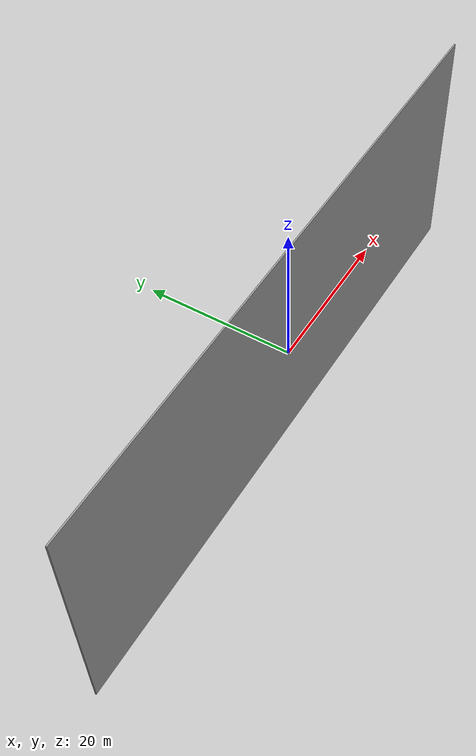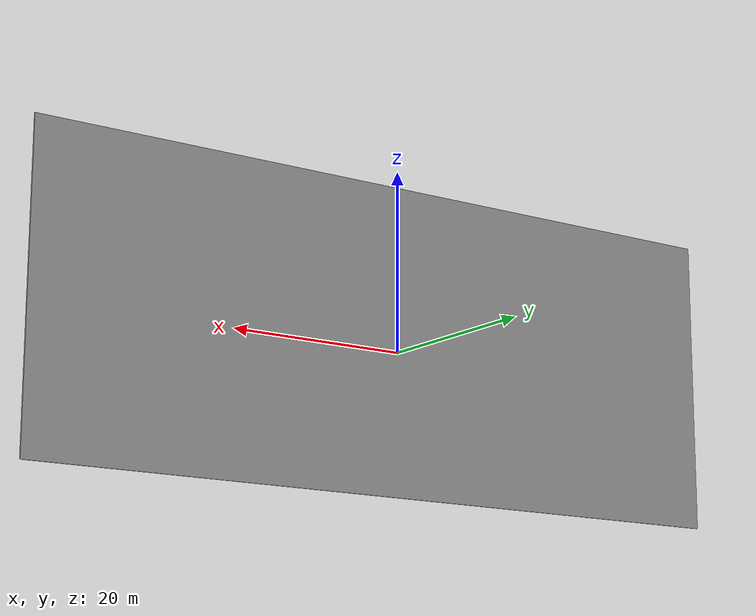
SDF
<?xml version="1.0" ?>
<sdf version="1.5">
  <model name="grey_wall">
    <static>true</static>
    <link name="link">
      <pose>0 0 1.4 0 0 0</pose>
      <collision name="collision">
        <geometry>
          <box>
            <size>84.85 0.2 33.6</size>
          </box>
        </geometry>
      </collision>
      <visual name="visual">
        <cast_shadows>false</cast_shadows>
        <geometry>
          <box>
            <size>84.85 0.2 33.6</size>
          </box>
        </geometry>
        <material>
          <script>
            <uri>model://grey_wall/materials/scripts</uri>
            <uri>model://grey_wall/materials/textures</uri>
            <name>vrc/grey_wall</name>
          </script>
        </material>
      </visual>
    </link>
  </model>
</sdf>
